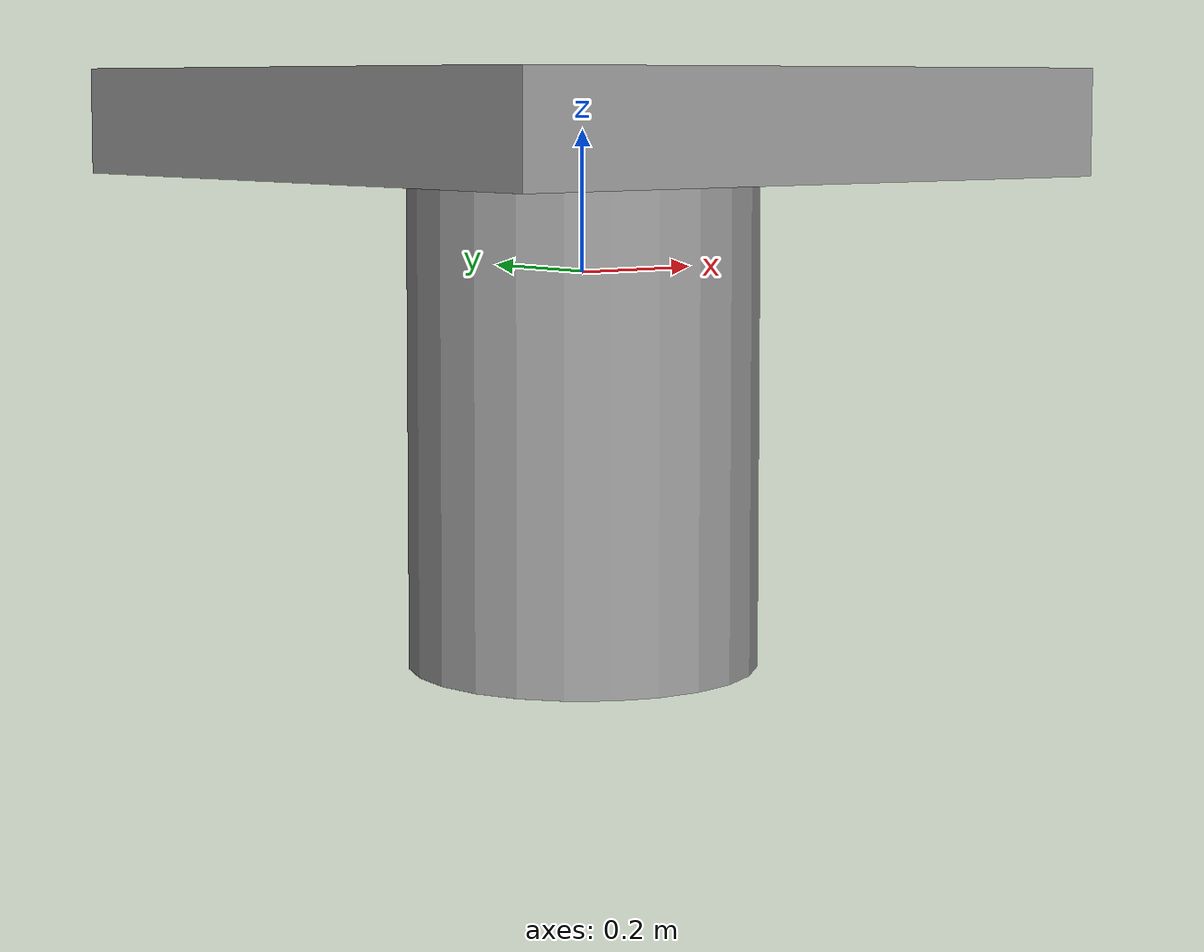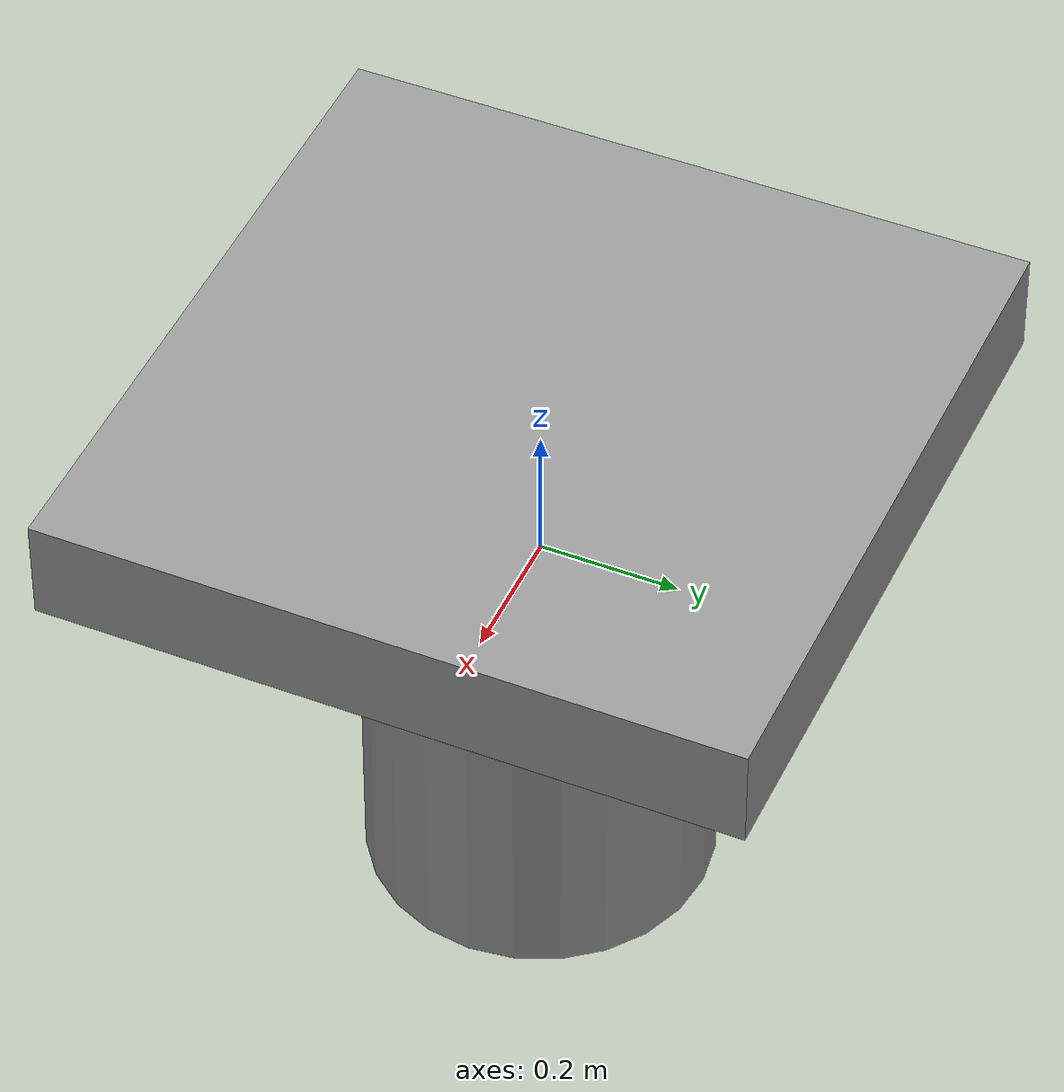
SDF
<?xml version='1.0'?>
<sdf version='1.6'>
  <model name='table'>
    <link name='link_0'>
      <pose frame=''>-0 0 0.212306 0 -0 0</pose>
      <inertial>
        <mass>0.149222</mass>
        <inertia>
          <ixx>0.0127121</ixx>
          <ixy>0</ixy>
          <ixz>0</ixz>
          <iyy>0.0127121</iyy>
          <iyz>0</iyz>
          <izz>0.0248704</izz>
        </inertia>
        <pose frame=''>0 0 0 0 -0 0</pose>
      </inertial>
      <gravity>1</gravity>
      <self_collide>0</self_collide>
      <kinematic>0</kinematic>
      <visual name='visual'>
        <pose frame=''>0 0 0 0 -0 0</pose>
        <geometry>
          <box>
            <size>1 1 0.149223</size>
          </box>
        </geometry>
        <material>
          <lighting>1</lighting>
          <script>
            <uri>file://media/materials/scripts/gazebo.material</uri>
            <name>Gazebo/Grey</name>
          </script>
          <shader type='pixel'>
            <normal_map>__default__</normal_map>
          </shader>
          <ambient>0.3 0.3 0.3 1</ambient>
          <diffuse>0.7 0.7 0.7 1</diffuse>
          <specular>0.01 0.01 0.01 1</specular>
          <emissive>0 0 0 1</emissive>
        </material>
        <transparency>0</transparency>
        <cast_shadows>1</cast_shadows>
      </visual>
      <collision name='collision'>
        <laser_retro>0</laser_retro>
        <max_contacts>10</max_contacts>
        <pose frame=''>0 0 0 0 -0 0</pose>
        <geometry>
          <box>
            <size>1 1 0.149223</size>
          </box>
        </geometry>
        <surface>
          <friction>
            <ode>
              <mu>1</mu>
              <mu2>1</mu2>
              <fdir1>0 0 0</fdir1>
              <slip1>0</slip1>
              <slip2>0</slip2>
            </ode>
            <torsional>
              <coefficient>1</coefficient>
              <patch_radius>0</patch_radius>
              <surface_radius>0</surface_radius>
              <use_patch_radius>1</use_patch_radius>
              <ode>
                <slip>0</slip>
              </ode>
            </torsional>
          </friction>
          <bounce>
            <restitution_coefficient>0</restitution_coefficient>
            <threshold>1e+06</threshold>
          </bounce>
          <contact>
            <collide_without_contact>0</collide_without_contact>
            <collide_without_contact_bitmask>1</collide_without_contact_bitmask>
            <collide_bitmask>1</collide_bitmask>
            <ode>
              <soft_cfm>0</soft_cfm>
              <soft_erp>0.2</soft_erp>
              <kp>1e+13</kp>
              <kd>1</kd>
              <max_vel>0.01</max_vel>
              <min_depth>0</min_depth>
            </ode>
            <bullet>
              <split_impulse>1</split_impulse>
              <split_impulse_penetration_threshold>-0.01</split_impulse_penetration_threshold>
              <soft_cfm>0</soft_cfm>
              <soft_erp>0.2</soft_erp>
              <kp>1e+13</kp>
              <kd>1</kd>
            </bullet>
          </contact>
        </surface>
      </collision>
    </link>
    <link name='link_1'>
      <pose frame=''>-0 0 -0.212306 0 -0 0</pose>
      <inertial>
        <mass>0.6939</mass>
        <inertia>
          <ixx>0.0712112</ixx>
          <ixy>0</ixy>
          <ixz>0</ixz>
          <iyy>0.0712112</iyy>
          <iyz>0</iyz>
          <izz>0.0867374</izz>
        </inertia>
        <pose frame=''>0 0 0 0 -0 0</pose>
      </inertial>
      <gravity>1</gravity>
      <self_collide>0</self_collide>
      <kinematic>0</kinematic>
      <visual name='visual'>
        <pose frame=''>0 0 0 0 -0 0</pose>
        <geometry>
          <cylinder>
            <radius>0.25</radius>
            <length>0.7</length>
          </cylinder>
        </geometry>
        <material>
          <lighting>1</lighting>
          <script>
            <uri>file://media/materials/scripts/gazebo.material</uri>
            <name>Gazebo/Grey</name>
          </script>
          <shader type='pixel'>
            <normal_map>__default__</normal_map>
          </shader>
          <ambient>0.3 0.3 0.3 1</ambient>
          <diffuse>0.7 0.7 0.7 1</diffuse>
          <specular>0.01 0.01 0.01 1</specular>
          <emissive>0 0 0 1</emissive>
        </material>
        <transparency>0</transparency>
        <cast_shadows>1</cast_shadows>
      </visual>
      <collision name='collision'>
        <laser_retro>0</laser_retro>
        <max_contacts>10</max_contacts>
        <pose frame=''>0 0 0 0 -0 0</pose>
        <geometry>
          <cylinder>
            <radius>0.25</radius>
            <length>0.7</length>
          </cylinder>
        </geometry>
        <surface>
          <friction>
            <ode>
              <mu>1</mu>
              <mu2>1</mu2>
              <fdir1>0 0 0</fdir1>
              <slip1>0</slip1>
              <slip2>0</slip2>
            </ode>
            <torsional>
              <coefficient>1</coefficient>
              <patch_radius>0</patch_radius>
              <surface_radius>0</surface_radius>
              <use_patch_radius>1</use_patch_radius>
              <ode>
                <slip>0</slip>
              </ode>
            </torsional>
          </friction>
          <bounce>
            <restitution_coefficient>0</restitution_coefficient>
            <threshold>1e+06</threshold>
          </bounce>
          <contact>
            <collide_without_contact>0</collide_without_contact>
            <collide_without_contact_bitmask>1</collide_without_contact_bitmask>
            <collide_bitmask>1</collide_bitmask>
            <ode>
              <soft_cfm>0</soft_cfm>
              <soft_erp>0.2</soft_erp>
              <kp>1e+13</kp>
              <kd>1</kd>
              <max_vel>0.01</max_vel>
              <min_depth>0</min_depth>
            </ode>
            <bullet>
              <split_impulse>1</split_impulse>
              <split_impulse_penetration_threshold>-0.01</split_impulse_penetration_threshold>
              <soft_cfm>0</soft_cfm>
              <soft_erp>0.2</soft_erp>
              <kp>1e+13</kp>
              <kd>1</kd>
            </bullet>
          </contact>
        </surface>
      </collision>
    </link>
    <joint name='link_0_JOINT_0' type='fixed'>
      <parent>link_0</parent>
      <child>link_1</child>
      <pose frame=''>0 0 0 0 -0 0</pose>
      <physics>
        <ode>
          <limit>
            <cfm>0</cfm>
            <erp>0.2</erp>
          </limit>
          <suspension>
            <cfm>0</cfm>
            <erp>0.2</erp>
          </suspension>
        </ode>
      </physics>
    </joint>
    <static>0</static>
    <allow_auto_disable>1</allow_auto_disable>
  </model>
</sdf>
